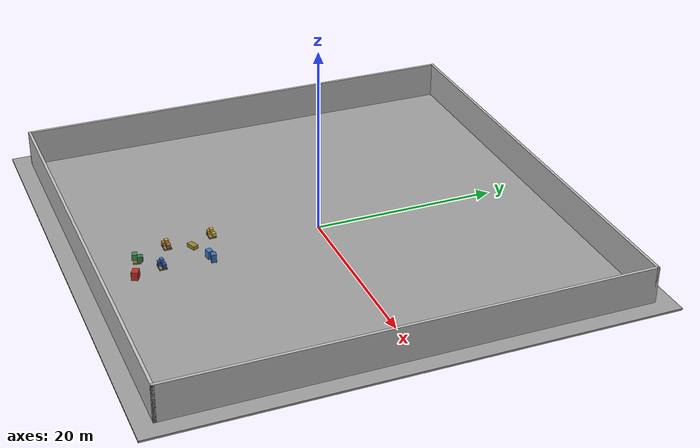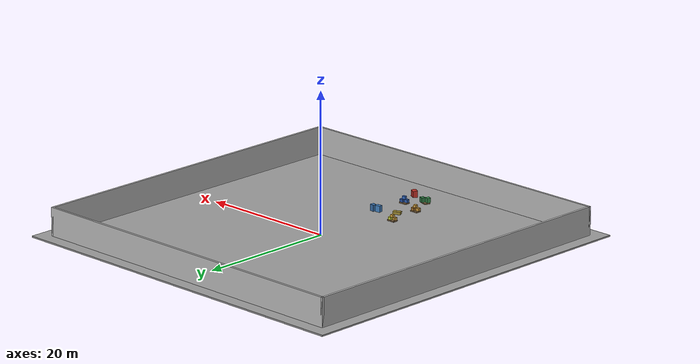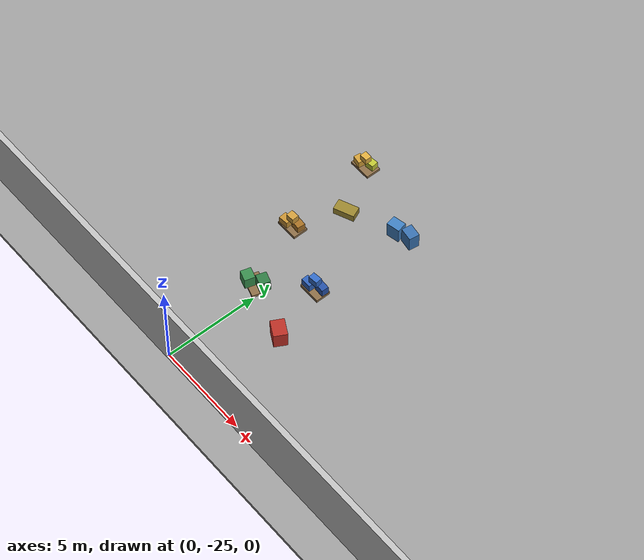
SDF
<sdf version="1.6">
 <world name="default">
  <gravity>0 0 -9.8</gravity>
  <physics default="0" name="default_physics" type="ode">
   <max_step_size>0.005</max_step_size>
   <real_time_factor>1.0</real_time_factor>
   <real_time_update_rate>1000</real_time_update_rate>
  </physics>
  <plugin name="ignition::gazebo::systems::Physics" filename="libignition-gazebo-physics-system.so"/>
  <plugin name="ignition::gazebo::systems::UserCommands" filename="libignition-gazebo-user-commands-system.so"/>
  <plugin name="ignition::gazebo::systems::SceneBroadcaster" filename="libignition-gazebo-scene-broadcaster-system.so"/>
  <plugin name="ignition::gazebo::systems::Imu" filename="ignition-gazebo-imu-system"/>
  <plugin name="ignition::gazebo::systems::Sensors" filename="ignition-gazebo-sensors-system">
   <render_engine>ogre2</render_engine>
  </plugin>
  <model name="warehouse_floor_plane">
   <static>true</static>
   <pose>0 0 -0.1 0 0 0</pose>
   <link name="link">
    <collision name="collision"><geometry><box><size>54 54 0.2</size></box></geometry></collision>
    <visual name="visual">
     <geometry><box><size>54 54 0.2</size></box></geometry>
     <material>
      <ambient>0.58 0.58 0.58 1</ambient>
      <diffuse>0.62 0.62 0.62 1</diffuse>
      <specular>0.05 0.05 0.05 1</specular>
     </material>
    </visual>
   </link>
  </model>
  <model name="box_pallet_C1">
   <static>true</static>
   <pose>-2.5 -11.0 0.075 0 0 0</pose>
   <link name="link">
    <collision name="c"><geometry><box><size>1.2 0.8 0.15</size></box></geometry></collision>
    <visual name="v">
     <geometry><box><size>1.2 0.8 0.15</size></box></geometry>
     <material><ambient>0.55 0.43 0.28 1</ambient><diffuse>0.55 0.43 0.28 1</diffuse></material>
    </visual>
   </link>
  </model>
  <model name="box_C1_A">
   <static>true</static>
   <pose>-2.8 -11.15 0.35 0 0 -0.15</pose>
   <link name="link">
    <collision name="c"><geometry><box><size>0.48 0.38 0.38</size></box></geometry></collision>
    <visual name="v">
     <geometry><box><size>0.48 0.38 0.38</size></box></geometry>
     <material><ambient>0.82 0.62 0.22 1</ambient><diffuse>0.82 0.62 0.22 1</diffuse></material>
    </visual>
   </link>
  </model>
  <model name="box_C1_B">
   <static>true</static>
   <pose>-2.25 -10.85 0.35 0 0 0.12</pose>
   <link name="link">
    <collision name="c"><geometry><box><size>0.48 0.38 0.38</size></box></geometry></collision>
    <visual name="v">
     <geometry><box><size>0.48 0.38 0.38</size></box></geometry>
     <material><ambient>0.75 0.78 0.2 1</ambient><diffuse>0.75 0.78 0.2 1</diffuse></material>
    </visual>
   </link>
  </model>
  <model name="box_C1_C">
   <static>true</static>
   <pose>-2.5 -11.0 0.73 0 0 0.0</pose>
   <link name="link">
    <collision name="c"><geometry><box><size>0.42 0.35 0.33</size></box></geometry></collision>
    <visual name="v">
     <geometry><box><size>0.42 0.35 0.33</size></box></geometry>
     <material><ambient>0.88 0.68 0.25 1</ambient><diffuse>0.88 0.68 0.25 1</diffuse></material>
    </visual>
   </link>
  </model>
  <model name="box_C2_A">
   <static>true</static>
   <pose>1.5 -12.5 0.45 0 0 0.2</pose>
   <link name="link">
    <collision name="c"><geometry><box><size>0.7 0.55 0.9</size></box></geometry></collision>
    <visual name="v">
     <geometry><box><size>0.7 0.55 0.9</size></box></geometry>
     <material><ambient>0.25 0.5 0.75 1</ambient><diffuse>0.25 0.5 0.75 1</diffuse></material>
    </visual>
   </link>
  </model>
  <model name="box_C2_B">
   <static>true</static>
   <pose>2.3 -12.3 0.45 0 0 -0.15</pose>
   <link name="link">
    <collision name="c"><geometry><box><size>0.7 0.55 0.9</size></box></geometry></collision>
    <visual name="v">
     <geometry><box><size>0.7 0.55 0.9</size></box></geometry>
     <material><ambient>0.22 0.44 0.68 1</ambient><diffuse>0.22 0.44 0.68 1</diffuse></material>
    </visual>
   </link>
  </model>
  <model name="box_C3_flat">
   <static>true</static>
   <pose>-1.0 -13.5 0.2 0 0 0.4</pose>
   <link name="link">
    <collision name="c"><geometry><box><size>1.1 0.6 0.4</size></box></geometry></collision>
    <visual name="v">
     <geometry><box><size>1.1 0.6 0.4</size></box></geometry>
     <material><ambient>0.6 0.52 0.18 1</ambient><diffuse>0.6 0.52 0.18 1</diffuse></material>
    </visual>
   </link>
  </model>
  <model name="box_pallet_S1">
   <static>true</static>
   <pose>-2.0 -16.0 0.075 0 0 0</pose>
   <link name="link">
    <collision name="c"><geometry><box><size>1.2 0.8 0.15</size></box></geometry></collision>
    <visual name="v">
     <geometry><box><size>1.2 0.8 0.15</size></box></geometry>
     <material><ambient>0.55 0.43 0.28 1</ambient><diffuse>0.55 0.43 0.28 1</diffuse></material>
    </visual>
   </link>
  </model>
  <model name="box_S1_A">
   <static>true</static>
   <pose>-2.3 -16.15 0.35 0 0 0.08</pose>
   <link name="link">
    <collision name="c"><geometry><box><size>0.52 0.42 0.4</size></box></geometry></collision>
    <visual name="v">
     <geometry><box><size>0.52 0.42 0.4</size></box></geometry>
     <material><ambient>0.78 0.57 0.2 1</ambient><diffuse>0.78 0.57 0.2 1</diffuse></material>
    </visual>
   </link>
  </model>
  <model name="box_S1_B">
   <static>true</static>
   <pose>-1.72 -15.88 0.35 0 0 -0.08</pose>
   <link name="link">
    <collision name="c"><geometry><box><size>0.52 0.42 0.4</size></box></geometry></collision>
    <visual name="v">
     <geometry><box><size>0.52 0.42 0.4</size></box></geometry>
     <material><ambient>0.65 0.44 0.14 1</ambient><diffuse>0.65 0.44 0.14 1</diffuse></material>
    </visual>
   </link>
  </model>
  <model name="box_S1_C">
   <static>true</static>
   <pose>-2.0 -16.0 0.78 0 0 0.05</pose>
   <link name="link">
    <collision name="c"><geometry><box><size>0.44 0.38 0.36</size></box></geometry></collision>
    <visual name="v">
     <geometry><box><size>0.44 0.38 0.36</size></box></geometry>
     <material><ambient>0.82 0.62 0.24 1</ambient><diffuse>0.82 0.62 0.24 1</diffuse></material>
    </visual>
   </link>
  </model>
  <model name="box_pallet_S2">
   <static>true</static>
   <pose>1.5 -17.5 0.075 0 0 0</pose>
   <link name="link">
    <collision name="c"><geometry><box><size>1.2 0.8 0.15</size></box></geometry></collision>
    <visual name="v">
     <geometry><box><size>1.2 0.8 0.15</size></box></geometry>
     <material><ambient>0.55 0.43 0.28 1</ambient><diffuse>0.55 0.43 0.28 1</diffuse></material>
    </visual>
   </link>
  </model>
  <model name="box_S2_A">
   <static>true</static>
   <pose>1.2 -17.65 0.37 0 0 0.0</pose>
   <link name="link">
    <collision name="c"><geometry><box><size>0.55 0.38 0.44</size></box></geometry></collision>
    <visual name="v">
     <geometry><box><size>0.55 0.38 0.44</size></box></geometry>
     <material><ambient>0.18 0.38 0.72 1</ambient><diffuse>0.18 0.38 0.72 1</diffuse></material>
    </visual>
   </link>
  </model>
  <model name="box_S2_B">
   <static>true</static>
   <pose>1.8 -17.35 0.37 0 0 -0.05</pose>
   <link name="link">
    <collision name="c"><geometry><box><size>0.55 0.38 0.44</size></box></geometry></collision>
    <visual name="v">
     <geometry><box><size>0.55 0.38 0.44</size></box></geometry>
     <material><ambient>0.15 0.32 0.65 1</ambient><diffuse>0.15 0.32 0.65 1</diffuse></material>
    </visual>
   </link>
  </model>
  <model name="box_S2_C">
   <static>true</static>
   <pose>1.5 -17.5 0.83 0 0 0.1</pose>
   <link name="link">
    <collision name="c"><geometry><box><size>0.5 0.35 0.4</size></box></geometry></collision>
    <visual name="v">
     <geometry><box><size>0.5 0.35 0.4</size></box></geometry>
     <material><ambient>0.2 0.42 0.78 1</ambient><diffuse>0.2 0.42 0.78 1</diffuse></material>
    </visual>
   </link>
  </model>
  <model name="box_pallet_S3">
   <static>true</static>
   <pose>-0.5 -19.5 0.075 0 0 -0.3</pose>
   <link name="link">
    <collision name="c"><geometry><box><size>1.2 0.8 0.15</size></box></geometry></collision>
    <visual name="v">
     <geometry><box><size>1.2 0.8 0.15</size></box></geometry>
     <material><ambient>0.55 0.43 0.28 1</ambient><diffuse>0.55 0.43 0.28 1</diffuse></material>
    </visual>
   </link>
  </model>
  <model name="box_S3_A">
   <static>true</static>
   <pose>-0.8 -19.7 0.48 0 0 -0.3</pose>
   <link name="link">
    <collision name="c"><geometry><box><size>0.6 0.55 0.66</size></box></geometry></collision>
    <visual name="v">
     <geometry><box><size>0.6 0.55 0.66</size></box></geometry>
     <material><ambient>0.22 0.55 0.3 1</ambient><diffuse>0.22 0.55 0.3 1</diffuse></material>
    </visual>
   </link>
  </model>
  <model name="box_S3_B">
   <static>true</static>
   <pose>-0.15 -19.3 0.48 0 0 -0.32</pose>
   <link name="link">
    <collision name="c"><geometry><box><size>0.6 0.55 0.66</size></box></geometry></collision>
    <visual name="v">
     <geometry><box><size>0.6 0.55 0.66</size></box></geometry>
     <material><ambient>0.18 0.48 0.26 1</ambient><diffuse>0.18 0.48 0.26 1</diffuse></material>
    </visual>
   </link>
  </model>
  <model name="box_S4_bigcrate">
   <static>true</static>
   <pose>2.5 -20.5 0.45 0 0 -0.5</pose>
   <link name="link">
    <collision name="c"><geometry><box><size>0.9 0.7 0.9</size></box></geometry></collision>
    <visual name="v">
     <geometry><box><size>0.9 0.7 0.9</size></box></geometry>
     <material><ambient>0.72 0.18 0.14 1</ambient><diffuse>0.72 0.18 0.14 1</diffuse></material>
    </visual>
   </link>
  </model>
  <light name="Warehouse_CeilingLight_003" type="point">
   <pose>0 0 9 0 0 0</pose>
   <diffuse>0.5 0.5 0.5 1</diffuse>
   <specular>0.2 0.2 0.2 1</specular>
   <attenuation>
    <range>80</range>
    <constant>0.3</constant>
    <linear>0.01</linear>
    <quadratic>0.001</quadratic>
   </attenuation>
   <direction>0.1 0.1 -1</direction>
  </light>
  <model name="warehouse_wall_north">
   <static>true</static>
   <pose>0 25 2 0 0 0</pose>
   <link name="link">
    <collision name="collision"><geometry><box><size>50.3 0.3 4</size></box></geometry></collision>
    <visual name="visual">
     <geometry><box><size>50.3 0.3 4</size></box></geometry>
     <material><ambient>0.75 0.75 0.75 1</ambient><diffuse>0.75 0.75 0.75 1</diffuse></material>
    </visual>
   </link>
  </model>
  <model name="warehouse_wall_south">
   <static>true</static>
   <pose>0 -25 2 0 0 0</pose>
   <link name="link">
    <collision name="collision"><geometry><box><size>50.3 0.3 4</size></box></geometry></collision>
    <visual name="visual">
     <geometry><box><size>50.3 0.3 4</size></box></geometry>
     <material><ambient>0.75 0.75 0.75 1</ambient><diffuse>0.75 0.75 0.75 1</diffuse></material>
    </visual>
   </link>
  </model>
  <model name="warehouse_wall_east">
   <static>true</static>
   <pose>25 0 2 0 0 0</pose>
   <link name="link">
    <collision name="collision"><geometry><box><size>0.3 50.3 4</size></box></geometry></collision>
    <visual name="visual">
     <geometry><box><size>0.3 50.3 4</size></box></geometry>
     <material><ambient>0.75 0.75 0.75 1</ambient><diffuse>0.75 0.75 0.75 1</diffuse></material>
    </visual>
   </link>
  </model>
  <model name="warehouse_wall_west">
   <static>true</static>
   <pose>-25 0 2 0 0 0</pose>
   <link name="link">
    <collision name="collision"><geometry><box><size>0.3 50.3 4</size></box></geometry></collision>
    <visual name="visual">
     <geometry><box><size>0.3 50.3 4</size></box></geometry>
     <material><ambient>0.75 0.75 0.75 1</ambient><diffuse>0.75 0.75 0.75 1</diffuse></material>
    </visual>
   </link>
  </model>
  <light name="Warehouse_CeilingLight_NW" type="point">
   <pose>-15 15 9 0 0 0</pose>
   <diffuse>0.5 0.5 0.5 1</diffuse>
   <specular>0.2 0.2 0.2 1</specular>
   <attenuation>
    <range>80</range>
    <constant>0.3</constant>
    <linear>0.01</linear>
    <quadratic>0.001</quadratic>
   </attenuation>
   <cast_shadows>0</cast_shadows>
   <direction>0 0 -1</direction>
  </light>
  <light name="Warehouse_CeilingLight_NE" type="point">
   <pose>15 15 9 0 0 0</pose>
   <diffuse>0.5 0.5 0.5 1</diffuse>
   <specular>0.2 0.2 0.2 1</specular>
   <attenuation>
    <range>80</range>
    <constant>0.3</constant>
    <linear>0.01</linear>
    <quadratic>0.001</quadratic>
   </attenuation>
   <cast_shadows>0</cast_shadows>
   <direction>0 0 -1</direction>
  </light>
  <light name="Warehouse_CeilingLight_SW" type="point">
   <pose>-15 -15 9 0 0 0</pose>
   <diffuse>0.5 0.5 0.5 1</diffuse>
   <specular>0.2 0.2 0.2 1</specular>
   <attenuation>
    <range>80</range>
    <constant>0.3</constant>
    <linear>0.01</linear>
    <quadratic>0.001</quadratic>
   </attenuation>
   <cast_shadows>0</cast_shadows>
   <direction>0 0 -1</direction>
  </light>
  <light name="Warehouse_CeilingLight_SE" type="point">
   <pose>15 -15 9 0 0 0</pose>
   <diffuse>0.5 0.5 0.5 1</diffuse>
   <specular>0.2 0.2 0.2 1</specular>
   <attenuation>
    <range>80</range>
    <constant>0.3</constant>
    <linear>0.01</linear>
    <quadratic>0.001</quadratic>
   </attenuation>
   <cast_shadows>0</cast_shadows>
   <direction>0 0 -1</direction>
  </light>
  <light name="Warehouse_CeilingLight_W" type="point">
   <pose>-20 0 9 0 0 0</pose>
   <diffuse>0.5 0.5 0.5 1</diffuse>
   <specular>0.2 0.2 0.2 1</specular>
   <attenuation>
    <range>80</range>
    <constant>0.3</constant>
    <linear>0.01</linear>
    <quadratic>0.001</quadratic>
   </attenuation>
   <cast_shadows>0</cast_shadows>
   <direction>0 0 -1</direction>
  </light>
  <light name="Warehouse_CeilingLight_E" type="point">
   <pose>20 0 9 0 0 0</pose>
   <diffuse>0.5 0.5 0.5 1</diffuse>
   <specular>0.2 0.2 0.2 1</specular>
   <attenuation>
    <range>80</range>
    <constant>0.3</constant>
    <linear>0.01</linear>
    <quadratic>0.001</quadratic>
   </attenuation>
   <cast_shadows>0</cast_shadows>
   <direction>0 0 -1</direction>
  </light>
  <light name="Warehouse_CeilingLight_N" type="point">
   <pose>0 20 9 0 0 0</pose>
   <diffuse>0.5 0.5 0.5 1</diffuse>
   <specular>0.2 0.2 0.2 1</specular>
   <attenuation>
    <range>80</range>
    <constant>0.3</constant>
    <linear>0.01</linear>
    <quadratic>0.001</quadratic>
   </attenuation>
   <cast_shadows>0</cast_shadows>
   <direction>0 0 -1</direction>
  </light>
  <light name="Warehouse_CeilingLight_S" type="point">
   <pose>0 -20 9 0 0 0</pose>
   <diffuse>0.5 0.5 0.5 1</diffuse>
   <specular>0.2 0.2 0.2 1</specular>
   <attenuation>
    <range>80</range>
    <constant>0.3</constant>
    <linear>0.01</linear>
    <quadratic>0.001</quadratic>
   </attenuation>
   <cast_shadows>0</cast_shadows>
   <direction>0 0 -1</direction>
  </light>
 </world>
</sdf>
